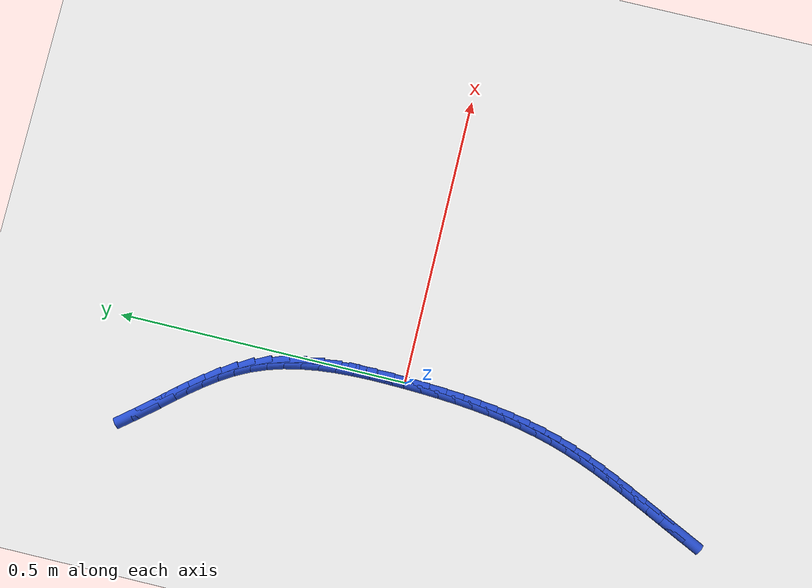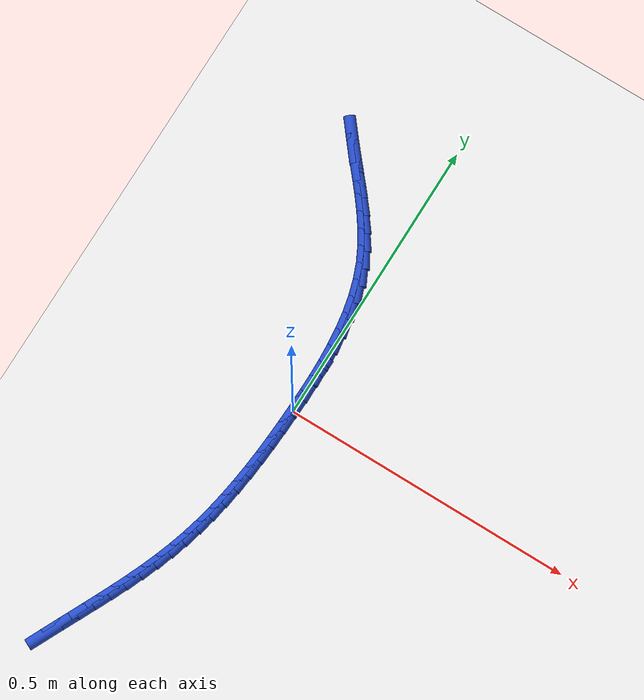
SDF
<sdf version="1.6">
 <world name="default">
  <model name="ground_plane">
   <static>1</static>
   <link name="link">
    <collision name="collision">
     <geometry><plane><normal>0 0 1</normal><size>100 100</size></plane></geometry>
     <surface><friction><ode><mu>100</mu><mu2>50</mu2></ode></friction></surface>
    </collision>
    <visual name="visual">
     <cast_shadows>0</cast_shadows>
     <geometry><plane><normal>0 0 1</normal><size>100 100</size></plane></geometry>
     <material>
      <script><uri>file://media/materials/scripts/gazebo.material</uri><name>Gazebo/WhiteGlow</name></script>
     </material>
    </visual>
   </link>
  </model>
  <model name="line">
   <link name="link_0">
    <pose>-1.6642503347652493e-17 -5.551115123125783e-17 0.01 0 1.57 1.5445201447881862</pose>
    <collision name="collision">
     <geometry><cylinder><radius>0.01</radius><length>0.08</length></cylinder></geometry>
    </collision>
    <visual name="visual">
     <material>
      <script><name>Gazebo/Blue</name><uri>file://media/materials/scripts/gazebo.material</uri></script>
     </material>
     <geometry><cylinder><radius>0.01</radius><length>0.08</length></cylinder></geometry>
    </visual>
   </link>
   <link name="link_1">
    <pose>0.0008000069917393401 0.030439082234995526 0.01 0 1.57 1.5642314247843212</pose>
    <collision name="collision">
     <geometry><cylinder><radius>0.01</radius><length>0.08</length></cylinder></geometry>
    </collision>
    <visual name="visual">
     <material>
      <script><name>Gazebo/Blue</name><uri>file://media/materials/scripts/gazebo.material</uri></script>
     </material>
     <geometry><cylinder><radius>0.01</radius><length>0.08</length></cylinder></geometry>
    </visual>
   </link>
   <link name="link_2">
    <pose>0.001000080856398267 0.06091493550307784 0.01 0 1.57 -1.5499489502163104</pose>
    <collision name="collision">
     <geometry><cylinder><radius>0.01</radius><length>0.08</length></cylinder></geometry>
    </collision>
    <visual name="visual">
     <material>
      <script><name>Gazebo/Blue</name><uri>file://media/materials/scripts/gazebo.material</uri></script>
     </material>
     <geometry><cylinder><radius>0.01</radius><length>0.08</length></cylinder></geometry>
    </visual>
   </link>
   <link name="link_3">
    <pose>0.0003668940376574104 0.091283029218157 0.01 0 1.57 -1.5144148475372459</pose>
    <collision name="collision">
     <geometry><cylinder><radius>0.01</radius><length>0.08</length></cylinder></geometry>
    </collision>
    <visual name="visual">
     <material>
      <script><name>Gazebo/Blue</name><uri>file://media/materials/scripts/gazebo.material</uri></script>
     </material>
     <geometry><cylinder><radius>0.01</radius><length>0.08</length></cylinder></geometry>
    </visual>
   </link>
   <link name="link_4">
    <pose>-0.0013328810208025812 0.12139883279414306 0.01 0 1.57 -1.4702018404659567</pose>
    <collision name="collision">
     <geometry><cylinder><radius>0.01</radius><length>0.08</length></cylinder></geometry>
    </collision>
    <visual name="visual">
     <material>
      <script><name>Gazebo/Blue</name><uri>file://media/materials/scripts/gazebo.material</uri></script>
     </material>
     <geometry><cylinder><radius>0.01</radius><length>0.08</length></cylinder></geometry>
    </visual>
   </link>
   <link name="link_5">
    <pose>-0.004332571875301063 0.15111781564494606 0.01 0 1.57 -1.4166719264230967</pose>
    <collision name="collision">
     <geometry><cylinder><radius>0.01</radius><length>0.08</length></cylinder></geometry>
    </collision>
    <visual name="visual">
     <material>
      <script><name>Gazebo/Blue</name><uri>file://media/materials/scripts/gazebo.material</uri></script>
     </material>
     <geometry><cylinder><radius>0.01</radius><length>0.08</length></cylinder></geometry>
    </visual>
   </link>
   <link name="link_6">
    <pose>-0.00886550608215739 0.1802954471844761 0.01 0 1.57 -1.3531977401613675</pose>
    <collision name="collision">
     <geometry><cylinder><radius>0.01</radius><length>0.08</length></cylinder></geometry>
    </collision>
    <visual name="visual">
     <material>
      <script><name>Gazebo/Blue</name><uri>file://media/materials/scripts/gazebo.material</uri></script>
     </material>
     <geometry><cylinder><radius>0.01</radius><length>0.08</length></cylinder></geometry>
    </visual>
   </link>
   <link name="link_7">
    <pose>-0.015165011197690913 0.20878719682664318 0.01 0 1.57 -1.279306285404666</pose>
    <collision name="collision">
     <geometry><cylinder><radius>0.01</radius><length>0.08</length></cylinder></geometry>
    </collision>
    <visual name="visual">
     <material>
      <script><name>Gazebo/Blue</name><uri>file://media/materials/scripts/gazebo.material</uri></script>
     </material>
     <geometry><cylinder><radius>0.01</radius><length>0.08</length></cylinder></geometry>
    </visual>
   </link>
   <link name="link_8">
    <pose>-0.023464414778220987 0.23644853398535742 0.01 0 1.57 -1.1948831399953643</pose>
    <collision name="collision">
     <geometry><cylinder><radius>0.01</radius><length>0.08</length></cylinder></geometry>
    </collision>
    <visual name="visual">
     <material>
      <script><name>Gazebo/Blue</name><uri>file://media/materials/scripts/gazebo.material</uri></script>
     </material>
     <geometry><cylinder><radius>0.01</radius><length>0.08</length></cylinder></geometry>
    </visual>
   </link>
   <link name="link_9">
    <pose>-0.03399704438006697 0.2631349280745289 0.01 0 1.57 -1.1022734935256397</pose>
    <collision name="collision">
     <geometry><cylinder><radius>0.01</radius><length>0.08</length></cylinder></geometry>
    </collision>
    <visual name="visual">
     <material>
      <script><name>Gazebo/Blue</name><uri>file://media/materials/scripts/gazebo.material</uri></script>
     </material>
     <geometry><cylinder><radius>0.01</radius><length>0.08</length></cylinder></geometry>
    </visual>
   </link>
   <link name="link_10">
    <pose>-0.04694926712609044 0.28872669489334557 0.01 0 1.57 -1.0190361585610097</pose>
    <collision name="collision">
     <geometry><cylinder><radius>0.01</radius><length>0.08</length></cylinder></geometry>
    </collision>
    <visual name="visual">
     <material>
      <script><name>Gazebo/Blue</name><uri>file://media/materials/scripts/gazebo.material</uri></script>
     </material>
     <geometry><cylinder><radius>0.01</radius><length>0.08</length></cylinder></geometry>
    </visual>
   </link>
   <link name="link_11">
    <pose>-0.062090200094298234 0.3133249138628029 0.01 0 1.57 -0.9543095627153845</pose>
    <collision name="collision">
     <geometry><cylinder><radius>0.01</radius><length>0.08</length></cylinder></geometry>
    </collision>
    <visual name="visual">
     <material>
      <script><name>Gazebo/Blue</name><uri>file://media/materials/scripts/gazebo.material</uri></script>
     </material>
     <geometry><cylinder><radius>0.01</radius><length>0.08</length></cylinder></geometry>
    </visual>
   </link>
   <link name="link_12">
    <pose>-0.07897045504207179 0.33714627380061163 0.01 0 1.57 -0.9077355483012163</pose>
    <collision name="collision">
     <geometry><cylinder><radius>0.01</radius><length>0.08</length></cylinder></geometry>
    </collision>
    <visual name="visual">
     <material>
      <script><name>Gazebo/Blue</name><uri>file://media/materials/scripts/gazebo.material</uri></script>
     </material>
     <geometry><cylinder><radius>0.01</radius><length>0.08</length></cylinder></geometry>
    </visual>
   </link>
   <link name="link_13">
    <pose>-0.09713872558459881 0.3604084783979937 0.01 0 1.57 -0.8785258489261263</pose>
    <collision name="collision">
     <geometry><cylinder><radius>0.01</radius><length>0.08</length></cylinder></geometry>
    </collision>
    <visual name="visual">
     <material>
      <script><name>Gazebo/Blue</name><uri>file://media/materials/scripts/gazebo.material</uri></script>
     </material>
     <geometry><cylinder><radius>0.01</radius><length>0.08</length></cylinder></geometry>
    </visual>
   </link>
   <link name="link_14">
    <pose>-0.11614370533706699 0.38332923134617064 0.01 0 1.57 -0.8659731199736854</pose>
    <collision name="collision">
     <geometry><cylinder><radius>0.01</radius><length>0.08</length></cylinder></geometry>
    </collision>
    <visual name="visual">
     <material>
      <script><name>Gazebo/Blue</name><uri>file://media/materials/scripts/gazebo.material</uri></script>
     </material>
     <geometry><cylinder><radius>0.01</radius><length>0.08</length></cylinder></geometry>
    </visual>
   </link>
   <link name="link_15">
    <pose>-0.13553408791466404 0.4061262363363642 0.01 0 1.57 -0.8696808996757444</pose>
    <collision name="collision">
     <geometry><cylinder><radius>0.01</radius><length>0.08</length></cylinder></geometry>
    </collision>
    <visual name="visual">
     <material>
      <script><name>Gazebo/Blue</name><uri>file://media/materials/scripts/gazebo.material</uri></script>
     </material>
     <geometry><cylinder><radius>0.01</radius><length>0.08</length></cylinder></geometry>
    </visual>
   </link>
   <link name="link_16">
    <pose>-0.15485856693257763 0.4290171970597959 0.01 0 1.57 -0.8896454597032964</pose>
    <collision name="collision">
     <geometry><cylinder><radius>0.01</radius><length>0.08</length></cylinder></geometry>
    </collision>
    <visual name="visual">
     <material>
      <script><name>Gazebo/Blue</name><uri>file://media/materials/scripts/gazebo.material</uri></script>
     </material>
     <geometry><cylinder><radius>0.01</radius><length>0.08</length></cylinder></geometry>
    </visual>
   </link>
   <link name="link_212">
    <pose>-0.1388752764032326 -0.5053644000610202 0.01 0 1.57 1.123956896798517</pose>
    <collision name="collision">
     <geometry><cylinder><radius>0.01</radius><length>0.08</length></cylinder></geometry>
    </collision>
    <visual name="visual">
     <material>
      <script><name>Gazebo/Blue</name><uri>file://media/materials/scripts/gazebo.material</uri></script>
     </material>
     <geometry><cylinder><radius>0.01</radius><length>0.08</length></cylinder></geometry>
    </visual>
   </link>
   <link name="link_213">
    <pose>-0.12573471361441269 -0.47794040302119 0.01 0 1.57 1.1205209984417162</pose>
    <collision name="collision">
     <geometry><cylinder><radius>0.01</radius><length>0.08</length></cylinder></geometry>
    </collision>
    <visual name="visual">
     <material>
      <script><name>Gazebo/Blue</name><uri>file://media/materials/scripts/gazebo.material</uri></script>
     </material>
     <geometry><cylinder><radius>0.01</radius><length>0.08</length></cylinder></geometry>
    </visual>
   </link>
   <link name="link_214">
    <pose>-0.11264833766353745 -0.450868578773896 0.01 0 1.57 1.1229707911433346</pose>
    <collision name="collision">
     <geometry><cylinder><radius>0.01</radius><length>0.08</length></cylinder></geometry>
    </collision>
    <visual name="visual">
     <material>
      <script><name>Gazebo/Blue</name><uri>file://media/materials/scripts/gazebo.material</uri></script>
     </material>
     <geometry><cylinder><radius>0.01</radius><length>0.08</length></cylinder></geometry>
    </visual>
   </link>
   <link name="link_215">
    <pose>-0.09976425701114408 -0.42404775466535644 0.01 0 1.57 1.1314873874497422</pose>
    <collision name="collision">
     <geometry><cylinder><radius>0.01</radius><length>0.08</length></cylinder></geometry>
    </collision>
    <visual name="visual">
     <material>
      <script><name>Gazebo/Blue</name><uri>file://media/materials/scripts/gazebo.material</uri></script>
     </material>
     <geometry><cylinder><radius>0.01</radius><length>0.08</length></cylinder></geometry>
    </visual>
   </link>
   <link name="link_216">
    <pose>-0.0872305801177707 -0.3973767580417912 0.01 0 1.57 1.1462222393683514</pose>
    <collision name="collision">
     <geometry><cylinder><radius>0.01</radius><length>0.08</length></cylinder></geometry>
    </collision>
    <visual name="visual">
     <material>
      <script><name>Gazebo/Blue</name><uri>file://media/materials/scripts/gazebo.material</uri></script>
     </material>
     <geometry><cylinder><radius>0.01</radius><length>0.08</length></cylinder></geometry>
    </visual>
   </link>
   <link name="link_217">
    <pose>-0.07519541544395449 -0.3707544162494186 0.01 0 1.57 1.1672842823692529</pose>
    <collision name="collision">
     <geometry><cylinder><radius>0.01</radius><length>0.08</length></cylinder></geometry>
    </collision>
    <visual name="visual">
     <material>
      <script><name>Gazebo/Blue</name><uri>file://media/materials/scripts/gazebo.material</uri></script>
     </material>
     <geometry><cylinder><radius>0.01</radius><length>0.08</length></cylinder></geometry>
    </visual>
   </link>
   <link name="link_218">
    <pose>-0.06380687145023296 -0.3440795566344574 0.01 0 1.57 1.1947193563245604</pose>
    <collision name="collision">
     <geometry><cylinder><radius>0.01</radius><length>0.08</length></cylinder></geometry>
    </collision>
    <visual name="visual">
     <material>
      <script><name>Gazebo/Blue</name><uri>file://media/materials/scripts/gazebo.material</uri></script>
     </material>
     <geometry><cylinder><radius>0.01</radius><length>0.08</length></cylinder></geometry>
    </visual>
   </link>
   <link name="link_219">
    <pose>-0.053213056597143336 -0.3172510065431255 0.01 0 1.57 1.2284821861810677</pose>
    <collision name="collision">
     <geometry><cylinder><radius>0.01</radius><length>0.08</length></cylinder></geometry>
    </collision>
    <visual name="visual">
     <material>
      <script><name>Gazebo/Blue</name><uri>file://media/materials/scripts/gazebo.material</uri></script>
     </material>
     <geometry><cylinder><radius>0.01</radius><length>0.08</length></cylinder></geometry>
    </visual>
   </link>
   <link name="link_220">
    <pose>-0.0435620793452237 -0.29016759332164344 0.01 0 1.57 1.2683769131499223</pose>
    <collision name="collision">
     <geometry><cylinder><radius>0.01</radius><length>0.08</length></cylinder></geometry>
    </collision>
    <visual name="visual">
     <material>
      <script><name>Gazebo/Blue</name><uri>file://media/materials/scripts/gazebo.material</uri></script>
     </material>
     <geometry><cylinder><radius>0.01</radius><length>0.08</length></cylinder></geometry>
    </visual>
   </link>
   <link name="link_221">
    <pose>-0.03500138060552492 -0.262728503440297 0.01 0 1.57 1.3111624573559735</pose>
    <collision name="collision">
     <geometry><cylinder><radius>0.01</radius><length>0.08</length></cylinder></geometry>
    </collision>
    <visual name="visual">
     <material>
      <script><name>Gazebo/Blue</name><uri>file://media/materials/scripts/gazebo.material</uri></script>
     </material>
     <geometry><cylinder><radius>0.01</radius><length>0.08</length></cylinder></geometry>
    </visual>
   </link>
   <link name="link_222">
    <pose>-0.027602357336248832 -0.2348738330161687 0.01 0 1.57 1.3510168713761805</pose>
    <collision name="collision">
     <geometry><cylinder><radius>0.01</radius><length>0.08</length></cylinder></geometry>
    </collision>
    <visual name="visual">
     <material>
      <script><name>Gazebo/Blue</name><uri>file://media/materials/scripts/gazebo.material</uri></script>
     </material>
     <geometry><cylinder><radius>0.01</radius><length>0.08</length></cylinder></geometry>
    </visual>
   </link>
   <link name="link_223">
    <pose>-0.02129119564834392 -0.2066217977833422 0.01 0 1.57 1.3872459379298718</pose>
    <collision name="collision">
     <geometry><cylinder><radius>0.01</radius><length>0.08</length></cylinder></geometry>
    </collision>
    <visual name="visual">
     <material>
      <script><name>Gazebo/Blue</name><uri>file://media/materials/scripts/gazebo.material</uri></script>
     </material>
     <geometry><cylinder><radius>0.01</radius><length>0.08</length></cylinder></geometry>
    </visual>
   </link>
   <link name="link_224">
    <pose>-0.015977738540484208 -0.17799940564050898 0.01 0 1.57 1.4198457913091038</pose>
    <collision name="collision">
     <geometry><cylinder><radius>0.01</radius><length>0.08</length></cylinder></geometry>
    </collision>
    <visual name="visual">
     <material>
      <script><name>Gazebo/Blue</name><uri>file://media/materials/scripts/gazebo.material</uri></script>
     </material>
     <geometry><cylinder><radius>0.01</radius><length>0.08</length></cylinder></geometry>
    </visual>
   </link>
   <link name="link_225">
    <pose>-0.011571829011343257 -0.14903366448635852 0.01 0 1.57 1.4488543706198553</pose>
    <collision name="collision">
     <geometry><cylinder><radius>0.01</radius><length>0.08</length></cylinder></geometry>
    </collision>
    <visual name="visual">
     <material>
      <script><name>Gazebo/Blue</name><uri>file://media/materials/scripts/gazebo.material</uri></script>
     </material>
     <geometry><cylinder><radius>0.01</radius><length>0.08</length></cylinder></geometry>
    </visual>
   </link>
   <link name="link_226">
    <pose>-0.007983310059594783 -0.11975158221958093 0.01 0 1.57 1.474338113950173</pose>
    <collision name="collision">
     <geometry><cylinder><radius>0.01</radius><length>0.08</length></cylinder></geometry>
    </collision>
    <visual name="visual">
     <material>
      <script><name>Gazebo/Blue</name><uri>file://media/materials/scripts/gazebo.material</uri></script>
     </material>
     <geometry><cylinder><radius>0.01</radius><length>0.08</length></cylinder></geometry>
    </visual>
   </link>
   <link name="link_227">
    <pose>-0.005122024683912504 -0.09018016673886628 0.01 0 1.57 1.4963805294436188</pose>
    <collision name="collision">
     <geometry><cylinder><radius>0.01</radius><length>0.08</length></cylinder></geometry>
    </collision>
    <visual name="visual">
     <material>
      <script><name>Gazebo/Blue</name><uri>file://media/materials/scripts/gazebo.material</uri></script>
     </material>
     <geometry><cylinder><radius>0.01</radius><length>0.08</length></cylinder></geometry>
    </visual>
   </link>
   <link name="link_228">
    <pose>-0.002897815882970092 -0.060346425942903896 0.01 0 1.57 1.515072838485181</pose>
    <collision name="collision">
     <geometry><cylinder><radius>0.01</radius><length>0.08</length></cylinder></geometry>
    </collision>
    <visual name="visual">
     <material>
      <script><name>Gazebo/Blue</name><uri>file://media/materials/scripts/gazebo.material</uri></script>
     </material>
     <geometry><cylinder><radius>0.01</radius><length>0.08</length></cylinder></geometry>
    </visual>
   </link>
   <link name="link_229">
    <pose>-0.001220526655441377 -0.030277367730385356 0.01 0 1.57 1.5305066231444362</pose>
    <collision name="collision">
     <geometry><cylinder><radius>0.01</radius><length>0.08</length></cylinder></geometry>
    </collision>
    <visual name="visual">
     <material>
      <script><name>Gazebo/Blue</name><uri>file://media/materials/scripts/gazebo.material</uri></script>
     </material>
     <geometry><cylinder><radius>0.01</radius><length>0.08</length></cylinder></geometry>
    </visual>
   </link>
   <link name="link_230">
    <pose>-1.3145951341386741e-17 -4.85722573273506e-17 0.01 0 1.57 1.542768264977676</pose>
    <collision name="collision">
     <geometry><cylinder><radius>0.01</radius><length>0.08</length></cylinder></geometry>
    </collision>
    <visual name="visual">
     <material>
      <script><name>Gazebo/Blue</name><uri>file://media/materials/scripts/gazebo.material</uri></script>
     </material>
     <geometry><cylinder><radius>0.01</radius><length>0.08</length></cylinder></geometry>
    </visual>
   </link>
   <link name="link_231">
    <pose>0.0008539210846802783 0.030458669349561984 0.01 0 1.57 1.5519349041663146</pose>
    <collision name="collision">
     <geometry><cylinder><radius>0.01</radius><length>0.08</length></cylinder></geometry>
    </collision>
    <visual name="visual">
     <material>
      <script><name>Gazebo/Blue</name><uri>file://media/materials/scripts/gazebo.material</uri></script>
     </material>
     <geometry><cylinder><radius>0.01</radius><length>0.08</length></cylinder></geometry>
    </visual>
   </link>
   <link name="link_232">
    <pose>0.0014313935999257785 0.06107163241961059 0.01 0 1.57 1.5473626715343525</pose>
    <collision name="collision">
     <geometry><cylinder><radius>0.01</radius><length>0.08</length></cylinder></geometry>
    </collision>
    <visual name="visual">
     <material>
      <script><name>Gazebo/Blue</name><uri>file://media/materials/scripts/gazebo.material</uri></script>
     </material>
     <geometry><cylinder><radius>0.01</radius><length>0.08</length></cylinder></geometry>
    </visual>
   </link>
  </model>
 </world>
</sdf>
